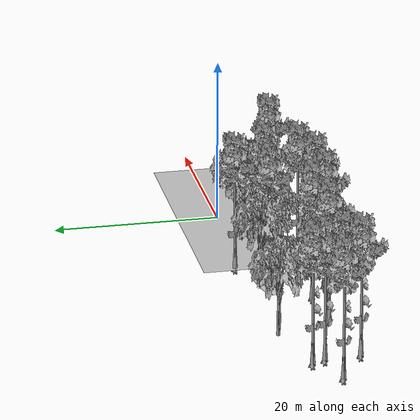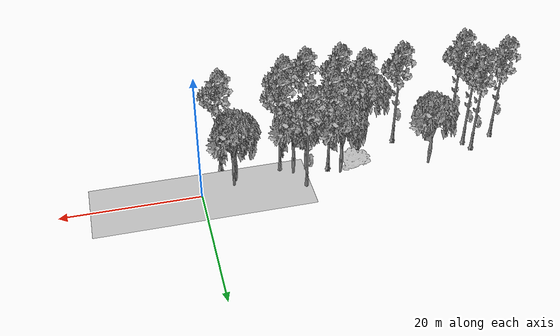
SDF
<sdf version="1.7">
 <world name="default">
  <model name="ground_plane">
   <static>1</static>
   <link name="link">
    <collision name="collision">
     <pose>-50 0 0 0 -0 0</pose>
     <geometry><plane><normal>0 0 1</normal><size>100 100</size></plane></geometry>
     <surface><contact><ode><min_depth>0.01</min_depth><max_vel>0</max_vel></ode></contact></surface>
    </collision>
    <visual name="grass">
     <cast_shadows>0</cast_shadows>
     <geometry>
      <mesh>
       <scale>0.5814285714285714 0.18142857142857144 0.1</scale>
       <uri>file://grass_plane/meshes/grass_plane.dae</uri>
      </mesh>
     </geometry>
    </visual>
   </link>
  </model>
  <model name="Tree 2">
   <static>1</static>
   <pose>-24.036398271626272 -7.637599285313509 0 1.57079 -0 0</pose>
   <link name="link">
    <collision name="collision">
     <geometry><mesh><scale>3.5 5 3.5</scale><uri>model://tree_2/meshes/tree_2.obj</uri></mesh></geometry>
    </collision>
    <visual name="visual">
     <geometry><mesh><scale>3.5 5 3.5</scale><uri>model://tree_2/meshes/tree_2.obj</uri></mesh></geometry>
    </visual>
   </link>
  </model>
  <model name="Tree 7">
   <static>1</static>
   <pose>-13.908793462417066 -2.199686056153894 0 1.57079 -0 0</pose>
   <link name="link">
    <collision name="collision">
     <geometry><mesh><scale>3.5 5 3.5</scale><uri>model://tree_2/meshes/tree_2.obj</uri></mesh></geometry>
    </collision>
    <visual name="visual">
     <geometry><mesh><scale>3.5 5 3.5</scale><uri>model://tree_2/meshes/tree_2.obj</uri></mesh></geometry>
    </visual>
   </link>
  </model>
  <model name="Tree 9">
   <static>1</static>
   <pose>-45.899195435918614 -4.327483313472856 0 1.57079 -0 0</pose>
   <link name="link">
    <collision name="collision">
     <geometry><mesh><scale>3.5 5 3.5</scale><uri>model://tree_9/meshes/tree_9.obj</uri></mesh></geometry>
    </collision>
    <visual name="visual">
     <geometry><mesh><scale>3.5 5 3.5</scale><uri>model://tree_9/meshes/tree_9.obj</uri></mesh></geometry>
    </visual>
   </link>
  </model>
  <model name="Tree 11">
   <static>1</static>
   <pose>-21.812975868504175 -8.057135958250296 0 1.57079 -0 0</pose>
   <link name="link">
    <collision name="collision">
     <geometry><mesh><scale>3.5 5 3.5</scale><uri>model://tree_9/meshes/tree_9.obj</uri></mesh></geometry>
    </collision>
    <visual name="visual">
     <geometry><mesh><scale>3.5 5 3.5</scale><uri>model://tree_9/meshes/tree_9.obj</uri></mesh></geometry>
    </visual>
   </link>
  </model>
  <model name="Tree 23">
   <static>1</static>
   <pose>-5.414956104736845 -2.4101769137004805 0 1.57079 -0 0</pose>
   <link name="link">
    <collision name="collision">
     <geometry><mesh><scale>3.5 5 3.5</scale><uri>model://tree_2/meshes/tree_2.obj</uri></mesh></geometry>
    </collision>
    <visual name="visual">
     <geometry><mesh><scale>3.5 5 3.5</scale><uri>model://tree_2/meshes/tree_2.obj</uri></mesh></geometry>
    </visual>
   </link>
  </model>
  <model name="Tree 24">
   <static>1</static>
   <pose>-23.02265946576647 -1.7180948324284238 0 1.57079 -0 0</pose>
   <link name="link">
    <collision name="collision">
     <geometry><mesh><scale>3 2 3</scale><uri>model://tree_3/meshes/tree_3.obj</uri></mesh></geometry>
    </collision>
    <visual name="visual">
     <geometry><mesh><scale>3 2 3</scale><uri>model://tree_3/meshes/tree_3.obj</uri></mesh></geometry>
    </visual>
   </link>
  </model>
  <model name="Tree 27">
   <static>1</static>
   <pose>-15.021074206600922 1.051469061175606 0 1.57079 -0 0</pose>
   <link name="link">
    <collision name="collision">
     <geometry><mesh><scale>3.5 5 3.5</scale><uri>model://tree_9/meshes/tree_9.obj</uri></mesh></geometry>
    </collision>
    <visual name="visual">
     <geometry><mesh><scale>3.5 5 3.5</scale><uri>model://tree_9/meshes/tree_9.obj</uri></mesh></geometry>
    </visual>
   </link>
  </model>
  <model name="Tree 61">
   <static>1</static>
   <pose>-16.678890668065407 -8.140371658824016 0 1.57079 -0 0</pose>
   <link name="link">
    <collision name="collision">
     <geometry><mesh><scale>3.5 5 3.5</scale><uri>model://tree_9/meshes/tree_9.obj</uri></mesh></geometry>
    </collision>
    <visual name="visual">
     <geometry><mesh><scale>3.5 5 3.5</scale><uri>model://tree_9/meshes/tree_9.obj</uri></mesh></geometry>
    </visual>
   </link>
  </model>
  <model name="Tree 66">
   <static>1</static>
   <pose>-40.644650435972174 -7.589495280926368 0 1.57079 -0 0</pose>
   <link name="link">
    <collision name="collision">
     <geometry><mesh><scale>3.5 5 3.5</scale><uri>model://tree_9/meshes/tree_9.obj</uri></mesh></geometry>
    </collision>
    <visual name="visual">
     <geometry><mesh><scale>3.5 5 3.5</scale><uri>model://tree_9/meshes/tree_9.obj</uri></mesh></geometry>
    </visual>
   </link>
  </model>
  <model name="Tree 75">
   <static>1</static>
   <pose>-13.126093351037198 -6.897403100708292 0 1.57079 -0 0</pose>
   <link name="link">
    <collision name="collision">
     <geometry><mesh><scale>3.5 5 3.5</scale><uri>model://tree_9/meshes/tree_9.obj</uri></mesh></geometry>
    </collision>
    <visual name="visual">
     <geometry><mesh><scale>3.5 5 3.5</scale><uri>model://tree_9/meshes/tree_9.obj</uri></mesh></geometry>
    </visual>
   </link>
  </model>
  <model name="Tree 76">
   <static>1</static>
   <pose>-4.994225809803595 -1.5106086896235489 0 1.57079 -0 0</pose>
   <link name="link">
    <collision name="collision">
     <geometry><mesh><scale>3.5 5 3.5</scale><uri>model://tree_2/meshes/tree_2.obj</uri></mesh></geometry>
    </collision>
    <visual name="visual">
     <geometry><mesh><scale>3.5 5 3.5</scale><uri>model://tree_2/meshes/tree_2.obj</uri></mesh></geometry>
    </visual>
   </link>
  </model>
  <model name="Tree 105">
   <static>1</static>
   <pose>-3.6475363088835238 -5.521651015562391 0 1.57079 -0 0</pose>
   <link name="link">
    <collision name="collision">
     <geometry><mesh><scale>3.5 5 3.5</scale><uri>model://tree_9/meshes/tree_9.obj</uri></mesh></geometry>
    </collision>
    <visual name="visual">
     <geometry><mesh><scale>3.5 5 3.5</scale><uri>model://tree_9/meshes/tree_9.obj</uri></mesh></geometry>
    </visual>
   </link>
  </model>
  <model name="Tree 109">
   <static>1</static>
   <pose>-24.82236451346596 -5.8713492316715605 0 1.57079 -0 0</pose>
   <link name="link">
    <collision name="collision">
     <geometry><mesh><scale>3.5 5 3.5</scale><uri>model://tree_9/meshes/tree_9.obj</uri></mesh></geometry>
    </collision>
    <visual name="visual">
     <geometry><mesh><scale>3.5 5 3.5</scale><uri>model://tree_9/meshes/tree_9.obj</uri></mesh></geometry>
    </visual>
   </link>
  </model>
  <model name="Tree 118">
   <static>1</static>
   <pose>-34.05352056269554 0.16553730559924063 0 1.57079 -0 0</pose>
   <link name="link">
    <collision name="collision">
     <geometry><mesh><scale>3.5 5 3.5</scale><uri>model://tree_2/meshes/tree_2.obj</uri></mesh></geometry>
    </collision>
    <visual name="visual">
     <geometry><mesh><scale>3.5 5 3.5</scale><uri>model://tree_2/meshes/tree_2.obj</uri></mesh></geometry>
    </visual>
   </link>
  </model>
  <model name="Tree 120">
   <static>1</static>
   <pose>-41.017997083781665 -3.442777390085462 0 1.57079 -0 0</pose>
   <link name="link">
    <collision name="collision">
     <geometry><mesh><scale>3.5 5 3.5</scale><uri>model://tree_9/meshes/tree_9.obj</uri></mesh></geometry>
    </collision>
    <visual name="visual">
     <geometry><mesh><scale>3.5 5 3.5</scale><uri>model://tree_9/meshes/tree_9.obj</uri></mesh></geometry>
    </visual>
   </link>
  </model>
  <model name="Tree 123">
   <static>1</static>
   <pose>-20.683749165055946 -0.7430971974417702 0 1.57079 -0 0</pose>
   <link name="link">
    <collision name="collision">
     <geometry><mesh><scale>3.5 5 3.5</scale><uri>model://tree_2/meshes/tree_2.obj</uri></mesh></geometry>
    </collision>
    <visual name="visual">
     <geometry><mesh><scale>3.5 5 3.5</scale><uri>model://tree_2/meshes/tree_2.obj</uri></mesh></geometry>
    </visual>
   </link>
  </model>
  <model name="Tree 124">
   <static>1</static>
   <pose>-26.48971115000607 -7.192222008752176 0 1.57079 -0 0</pose>
   <link name="link">
    <collision name="collision">
     <geometry><mesh><scale>3.5 5 3.5</scale><uri>model://tree_2/meshes/tree_2.obj</uri></mesh></geometry>
    </collision>
    <visual name="visual">
     <geometry><mesh><scale>3.5 5 3.5</scale><uri>model://tree_2/meshes/tree_2.obj</uri></mesh></geometry>
    </visual>
   </link>
  </model>
  <model name="Tree 147">
   <static>1</static>
   <pose>-15.895292392889345 -2.6470928300895036 0 1.57079 -0 0</pose>
   <link name="link">
    <collision name="collision">
     <geometry><mesh><scale>3.5 5 3.5</scale><uri>model://tree_2/meshes/tree_2.obj</uri></mesh></geometry>
    </collision>
    <visual name="visual">
     <geometry><mesh><scale>3.5 5 3.5</scale><uri>model://tree_2/meshes/tree_2.obj</uri></mesh></geometry>
    </visual>
   </link>
  </model>
  <model name="Tree 148">
   <static>1</static>
   <pose>-12.044016499644584 -3.1615077432016747 0 1.57079 -0 0</pose>
   <link name="link">
    <collision name="collision">
     <geometry><mesh><scale>3.5 5 3.5</scale><uri>model://tree_9/meshes/tree_9.obj</uri></mesh></geometry>
    </collision>
    <visual name="visual">
     <geometry><mesh><scale>3.5 5 3.5</scale><uri>model://tree_9/meshes/tree_9.obj</uri></mesh></geometry>
    </visual>
   </link>
  </model>
  <model name="Tree 151">
   <static>1</static>
   <pose>-41.69740881310787 -1.9006508112615563 0 1.57079 -0 0</pose>
   <link name="link">
    <collision name="collision">
     <geometry><mesh><scale>3.5 5 3.5</scale><uri>model://tree_9/meshes/tree_9.obj</uri></mesh></geometry>
    </collision>
    <visual name="visual">
     <geometry><mesh><scale>3.5 5 3.5</scale><uri>model://tree_9/meshes/tree_9.obj</uri></mesh></geometry>
    </visual>
   </link>
  </model>
  <model name="Tree 157">
   <static>1</static>
   <pose>-19.10312596414638 -2.191997743037504 0 1.57079 -0 0</pose>
   <link name="link">
    <collision name="collision">
     <geometry><mesh><scale>3.5 5 3.5</scale><uri>model://tree_9/meshes/tree_9.obj</uri></mesh></geometry>
    </collision>
    <visual name="visual">
     <geometry><mesh><scale>3.5 5 3.5</scale><uri>model://tree_9/meshes/tree_9.obj</uri></mesh></geometry>
    </visual>
   </link>
  </model>
  <model name="Tree 161">
   <static>1</static>
   <pose>-30.637331508323694 -6.4199387013028275 0 1.57079 -0 0</pose>
   <link name="link">
    <collision name="collision">
     <geometry><mesh><scale>3.5 5 3.5</scale><uri>model://tree_9/meshes/tree_9.obj</uri></mesh></geometry>
    </collision>
    <visual name="visual">
     <geometry><mesh><scale>3.5 5 3.5</scale><uri>model://tree_9/meshes/tree_9.obj</uri></mesh></geometry>
    </visual>
   </link>
  </model>
 </world>
</sdf>
